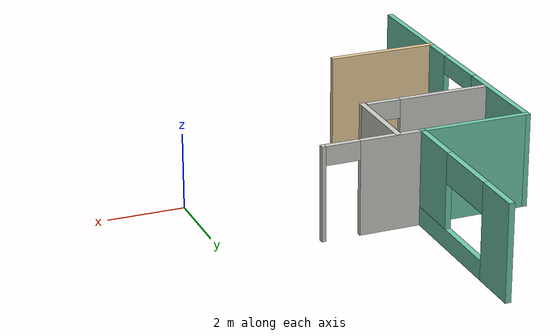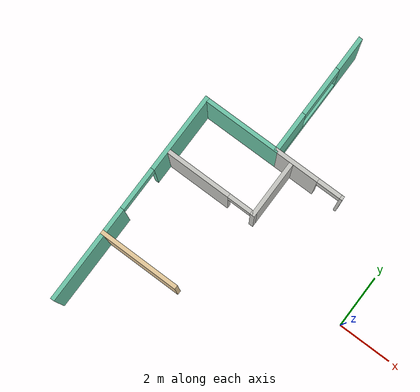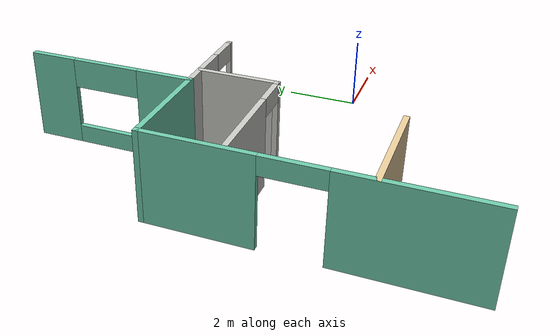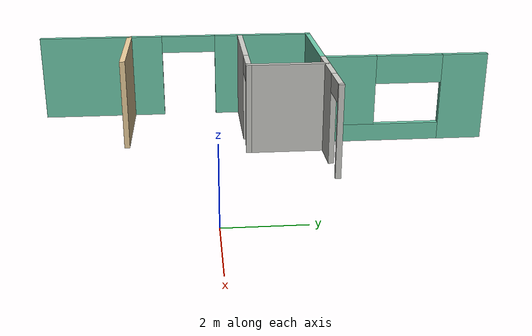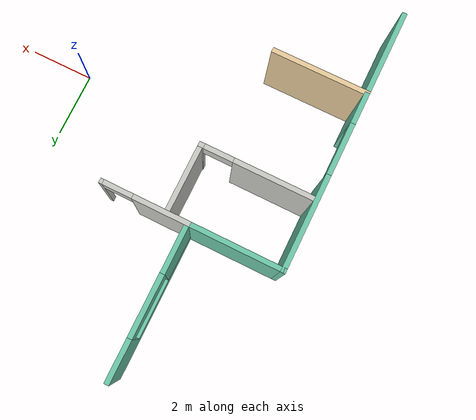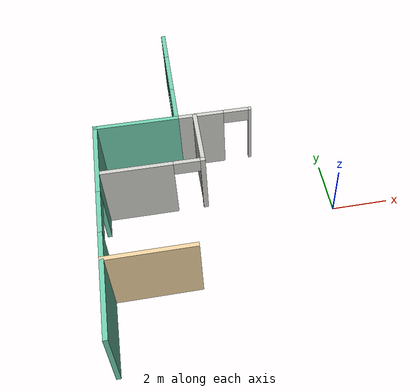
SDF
<sdf version="1.6">
 <model name="Building">
  <link name="Wall_271">
   <pose>-6.53342 -2.38169 0 0 -0 3.14159</pose>
   <visual name="Wall_271_Visual">
    <pose>0 0 1.25 0 -0 0</pose>
    <geometry><box><size>3 0.15 2.5</size></box></geometry>
    <material>
     <script><uri>file://media/materials/scripts/gazebo.material</uri><name>Gazebo/Grey</name></script>
     <ambient>0.921569 0.807843 0.615686 1</ambient>
     <shader type="pixel"/>
     <diffuse>0.7 0.7 0.7 1</diffuse>
     <specular>0.01 0.01 0.01 1</specular>
     <emissive>0 0 0 1</emissive>
    </material>
    <meta><layer>0</layer></meta>
   </visual>
   <collision name="Wall_271_Collision">
    <pose>0 0 1.25 0 -0 0</pose>
    <geometry><box><size>3 0.15 2.5</size></box></geometry>
    <surface>
     <friction>
      <ode><mu>1</mu><mu2>1</mu2><fdir1>0 0 0</fdir1><slip1>0</slip1><slip2>0</slip2></ode>
      <torsional>
       <coefficient>1</coefficient>
       <patch_radius>0</patch_radius>
       <surface_radius>0</surface_radius>
       <use_patch_radius>1</use_patch_radius>
       <ode><slip>0</slip></ode>
      </torsional>
     </friction>
     <bounce><restitution_coefficient>0</restitution_coefficient><threshold>1e+06</threshold></bounce>
     <contact>
      <collide_without_contact>0</collide_without_contact>
      <collide_without_contact_bitmask>1</collide_without_contact_bitmask>
      <collide_bitmask>1</collide_bitmask>
      <ode>
       <soft_cfm>0</soft_cfm>
       <soft_erp>0.2</soft_erp>
       <kp>1e+13</kp>
       <kd>1</kd>
       <max_vel>0.01</max_vel>
       <min_depth>0</min_depth>
      </ode>
      <bullet>
       <split_impulse>1</split_impulse>
       <split_impulse_penetration_threshold>-0.01</split_impulse_penetration_threshold>
       <soft_cfm>0</soft_cfm>
       <soft_erp>0.2</soft_erp>
       <kp>1e+13</kp>
       <kd>1</kd>
      </bullet>
     </contact>
    </surface>
   </collision>
  </link>
  <link name="Wall_3">
   <pose>-5.10853 5.41846 0 0 0 -1.5708</pose>
   <visual name="Wall_3_Visual_0">
    <pose>-1.72863 0 1.25 0 -0 0</pose>
    <geometry><box><size>1.29275 0.15 2.5</size></box></geometry>
    <material>
     <script><uri>file://media/materials/scripts/gazebo.material</uri><name>Gazebo/Grey</name></script>
     <ambient>0.435294 0.796078 0.67451 1</ambient>
     <shader type="pixel"/>
     <diffuse>0.7 0.7 0.7 1</diffuse>
     <specular>0.01 0.01 0.01 1</specular>
     <emissive>0 0 0 1</emissive>
    </material>
    <meta><layer>0</layer></meta>
   </visual>
   <visual name="Wall_3_Visual_1">
    <pose>0.646374 0 0.25 0 -0 0</pose>
    <geometry><box><size>3.45725 0.15 0.5</size></box></geometry>
    <material>
     <script><uri>file://media/materials/scripts/gazebo.material</uri><name>Gazebo/Grey</name></script>
     <ambient>0.435294 0.796078 0.67451 1</ambient>
     <shader type="pixel"/>
     <diffuse>0.7 0.7 0.7 1</diffuse>
     <specular>0.01 0.01 0.01 1</specular>
     <emissive>0 0 0 1</emissive>
    </material>
    <meta><layer>0</layer></meta>
   </visual>
   <visual name="Wall_3_Visual_2">
    <pose>1.58537 0 1.5 0 -0 0</pose>
    <geometry><box><size>1.57925 0.15 2</size></box></geometry>
    <material>
     <script><uri>file://media/materials/scripts/gazebo.material</uri><name>Gazebo/Grey</name></script>
     <ambient>0.435294 0.796078 0.67451 1</ambient>
     <shader type="pixel"/>
     <diffuse>0.7 0.7 0.7 1</diffuse>
     <specular>0.01 0.01 0.01 1</specular>
     <emissive>0 0 0 1</emissive>
    </material>
    <meta><layer>0</layer></meta>
   </visual>
   <visual name="Wall_3_Visual_3">
    <pose>-0.143253 0 2.1 0 -0 0</pose>
    <geometry><box><size>1.878 0.15 0.8</size></box></geometry>
    <material>
     <script><uri>file://media/materials/scripts/gazebo.material</uri><name>Gazebo/Grey</name></script>
     <ambient>0.435294 0.796078 0.67451 1</ambient>
     <shader type="pixel"/>
     <diffuse>0.7 0.7 0.7 1</diffuse>
     <specular>0.01 0.01 0.01 1</specular>
     <emissive>0 0 0 1</emissive>
    </material>
    <meta><layer>0</layer></meta>
   </visual>
   <collision name="Wall_3_Collision_3">
    <pose>-0.143253 0 2.1 0 -0 0</pose>
    <geometry><box><size>1.878 0.15 0.8</size></box></geometry>
    <surface>
     <friction>
      <ode><mu>1</mu><mu2>1</mu2><fdir1>0 0 0</fdir1><slip1>0</slip1><slip2>0</slip2></ode>
      <torsional>
       <coefficient>1</coefficient>
       <patch_radius>0</patch_radius>
       <surface_radius>0</surface_radius>
       <use_patch_radius>1</use_patch_radius>
       <ode><slip>0</slip></ode>
      </torsional>
     </friction>
     <bounce><restitution_coefficient>0</restitution_coefficient><threshold>1e+06</threshold></bounce>
     <contact>
      <collide_without_contact>0</collide_without_contact>
      <collide_without_contact_bitmask>1</collide_without_contact_bitmask>
      <collide_bitmask>1</collide_bitmask>
      <ode>
       <soft_cfm>0</soft_cfm>
       <soft_erp>0.2</soft_erp>
       <kp>1e+13</kp>
       <kd>1</kd>
       <max_vel>0.01</max_vel>
       <min_depth>0</min_depth>
      </ode>
      <bullet>
       <split_impulse>1</split_impulse>
       <split_impulse_penetration_threshold>-0.01</split_impulse_penetration_threshold>
       <soft_cfm>0</soft_cfm>
       <soft_erp>0.2</soft_erp>
       <kp>1e+13</kp>
       <kd>1</kd>
      </bullet>
     </contact>
    </surface>
   </collision>
   <collision name="Wall_3_Collision_0">
    <pose>-1.72863 0 1.25 0 -0 0</pose>
    <geometry><box><size>1.29275 0.15 2.5</size></box></geometry>
    <surface>
     <friction>
      <ode><mu>1</mu><mu2>1</mu2><fdir1>0 0 0</fdir1><slip1>0</slip1><slip2>0</slip2></ode>
      <torsional>
       <coefficient>1</coefficient>
       <patch_radius>0</patch_radius>
       <surface_radius>0</surface_radius>
       <use_patch_radius>1</use_patch_radius>
       <ode><slip>0</slip></ode>
      </torsional>
     </friction>
     <bounce><restitution_coefficient>0</restitution_coefficient><threshold>1e+06</threshold></bounce>
     <contact>
      <collide_without_contact>0</collide_without_contact>
      <collide_without_contact_bitmask>1</collide_without_contact_bitmask>
      <collide_bitmask>1</collide_bitmask>
      <ode>
       <soft_cfm>0</soft_cfm>
       <soft_erp>0.2</soft_erp>
       <kp>1e+13</kp>
       <kd>1</kd>
       <max_vel>0.01</max_vel>
       <min_depth>0</min_depth>
      </ode>
      <bullet>
       <split_impulse>1</split_impulse>
       <split_impulse_penetration_threshold>-0.01</split_impulse_penetration_threshold>
       <soft_cfm>0</soft_cfm>
       <soft_erp>0.2</soft_erp>
       <kp>1e+13</kp>
       <kd>1</kd>
      </bullet>
     </contact>
    </surface>
   </collision>
   <collision name="Wall_3_Collision_1">
    <pose>0.646374 0 0.25 0 -0 0</pose>
    <geometry><box><size>3.45725 0.15 0.5</size></box></geometry>
    <surface>
     <friction>
      <ode><mu>1</mu><mu2>1</mu2><fdir1>0 0 0</fdir1><slip1>0</slip1><slip2>0</slip2></ode>
      <torsional>
       <coefficient>1</coefficient>
       <patch_radius>0</patch_radius>
       <surface_radius>0</surface_radius>
       <use_patch_radius>1</use_patch_radius>
       <ode><slip>0</slip></ode>
      </torsional>
     </friction>
     <bounce><restitution_coefficient>0</restitution_coefficient><threshold>1e+06</threshold></bounce>
     <contact>
      <collide_without_contact>0</collide_without_contact>
      <collide_without_contact_bitmask>1</collide_without_contact_bitmask>
      <collide_bitmask>1</collide_bitmask>
      <ode>
       <soft_cfm>0</soft_cfm>
       <soft_erp>0.2</soft_erp>
       <kp>1e+13</kp>
       <kd>1</kd>
       <max_vel>0.01</max_vel>
       <min_depth>0</min_depth>
      </ode>
      <bullet>
       <split_impulse>1</split_impulse>
       <split_impulse_penetration_threshold>-0.01</split_impulse_penetration_threshold>
       <soft_cfm>0</soft_cfm>
       <soft_erp>0.2</soft_erp>
       <kp>1e+13</kp>
       <kd>1</kd>
      </bullet>
     </contact>
    </surface>
   </collision>
   <collision name="Wall_3_Collision_2">
    <pose>1.58537 0 1.5 0 -0 0</pose>
    <geometry><box><size>1.57925 0.15 2</size></box></geometry>
    <surface>
     <friction>
      <ode><mu>1</mu><mu2>1</mu2><fdir1>0 0 0</fdir1><slip1>0</slip1><slip2>0</slip2></ode>
      <torsional>
       <coefficient>1</coefficient>
       <patch_radius>0</patch_radius>
       <surface_radius>0</surface_radius>
       <use_patch_radius>1</use_patch_radius>
       <ode><slip>0</slip></ode>
      </torsional>
     </friction>
     <bounce><restitution_coefficient>0</restitution_coefficient><threshold>1e+06</threshold></bounce>
     <contact>
      <collide_without_contact>0</collide_without_contact>
      <collide_without_contact_bitmask>1</collide_without_contact_bitmask>
      <collide_bitmask>1</collide_bitmask>
      <ode>
       <soft_cfm>0</soft_cfm>
       <soft_erp>0.2</soft_erp>
       <kp>1e+13</kp>
       <kd>1</kd>
       <max_vel>0.01</max_vel>
       <min_depth>0</min_depth>
      </ode>
      <bullet>
       <split_impulse>1</split_impulse>
       <split_impulse_penetration_threshold>-0.01</split_impulse_penetration_threshold>
       <soft_cfm>0</soft_cfm>
       <soft_erp>0.2</soft_erp>
       <kp>1e+13</kp>
       <kd>1</kd>
      </bullet>
     </contact>
    </surface>
   </collision>
  </link>
  <link name="Wall_340">
   <pose>-3.80853 3.11846 0 0 -0 0</pose>
   <visual name="Wall_340_Visual_0">
    <pose>-0.501718 0 1.25 0 -0 0</pose>
    <geometry><box><size>1.74656 0.15 2.5</size></box></geometry>
    <material>
     <script><uri>file://media/materials/scripts/gazebo.material</uri><name>Gazebo/CeilingTiled</name></script>
     <ambient>0.921569 0.807843 0.615686 1</ambient>
     <shader type="pixel"/>
     <diffuse>1 1 1 1</diffuse>
     <specular>0 0 0 1</specular>
     <emissive>0 0 0 1</emissive>
    </material>
    <meta><layer>0</layer></meta>
   </visual>
   <visual name="Wall_340_Visual_1">
    <pose>1.32328 0 1.25 0 -0 0</pose>
    <geometry><box><size>0.103436 0.15 2.5</size></box></geometry>
    <material>
     <script><uri>file://media/materials/scripts/gazebo.material</uri><name>Gazebo/CeilingTiled</name></script>
     <ambient>0.921569 0.807843 0.615686 1</ambient>
     <shader type="pixel"/>
     <diffuse>1 1 1 1</diffuse>
     <specular>0 0 0 1</specular>
     <emissive>0 0 0 1</emissive>
    </material>
    <meta><layer>0</layer></meta>
   </visual>
   <visual name="Wall_340_Visual_2">
    <pose>0.821564 0 2.25 0 -0 0</pose>
    <geometry><box><size>0.9 0.15 0.5</size></box></geometry>
    <material>
     <script><uri>file://media/materials/scripts/gazebo.material</uri><name>Gazebo/CeilingTiled</name></script>
     <ambient>0.921569 0.807843 0.615686 1</ambient>
     <shader type="pixel"/>
     <diffuse>1 1 1 1</diffuse>
     <specular>0 0 0 1</specular>
     <emissive>0 0 0 1</emissive>
    </material>
    <meta><layer>0</layer></meta>
   </visual>
   <collision name="Wall_340_Collision_0">
    <pose>-0.501718 0 1.25 0 -0 0</pose>
    <geometry><box><size>1.74656 0.15 2.5</size></box></geometry>
    <surface>
     <friction>
      <ode><mu>1</mu><mu2>1</mu2><fdir1>0 0 0</fdir1><slip1>0</slip1><slip2>0</slip2></ode>
      <torsional>
       <coefficient>1</coefficient>
       <patch_radius>0</patch_radius>
       <surface_radius>0</surface_radius>
       <use_patch_radius>1</use_patch_radius>
       <ode><slip>0</slip></ode>
      </torsional>
     </friction>
     <bounce><restitution_coefficient>0</restitution_coefficient><threshold>1e+06</threshold></bounce>
     <contact>
      <collide_without_contact>0</collide_without_contact>
      <collide_without_contact_bitmask>1</collide_without_contact_bitmask>
      <collide_bitmask>1</collide_bitmask>
      <ode>
       <soft_cfm>0</soft_cfm>
       <soft_erp>0.2</soft_erp>
       <kp>1e+13</kp>
       <kd>1</kd>
       <max_vel>0.01</max_vel>
       <min_depth>0</min_depth>
      </ode>
      <bullet>
       <split_impulse>1</split_impulse>
       <split_impulse_penetration_threshold>-0.01</split_impulse_penetration_threshold>
       <soft_cfm>0</soft_cfm>
       <soft_erp>0.2</soft_erp>
       <kp>1e+13</kp>
       <kd>1</kd>
      </bullet>
     </contact>
    </surface>
   </collision>
   <collision name="Wall_340_Collision_1">
    <pose>1.32328 0 1.25 0 -0 0</pose>
    <geometry><box><size>0.103436 0.15 2.5</size></box></geometry>
    <surface>
     <friction>
      <ode><mu>1</mu><mu2>1</mu2><fdir1>0 0 0</fdir1><slip1>0</slip1><slip2>0</slip2></ode>
      <torsional>
       <coefficient>1</coefficient>
       <patch_radius>0</patch_radius>
       <surface_radius>0</surface_radius>
       <use_patch_radius>1</use_patch_radius>
       <ode><slip>0</slip></ode>
      </torsional>
     </friction>
     <bounce><restitution_coefficient>0</restitution_coefficient><threshold>1e+06</threshold></bounce>
     <contact>
      <collide_without_contact>0</collide_without_contact>
      <collide_without_contact_bitmask>1</collide_without_contact_bitmask>
      <collide_bitmask>1</collide_bitmask>
      <ode>
       <soft_cfm>0</soft_cfm>
       <soft_erp>0.2</soft_erp>
       <kp>1e+13</kp>
       <kd>1</kd>
       <max_vel>0.01</max_vel>
       <min_depth>0</min_depth>
      </ode>
      <bullet>
       <split_impulse>1</split_impulse>
       <split_impulse_penetration_threshold>-0.01</split_impulse_penetration_threshold>
       <soft_cfm>0</soft_cfm>
       <soft_erp>0.2</soft_erp>
       <kp>1e+13</kp>
       <kd>1</kd>
      </bullet>
     </contact>
    </surface>
   </collision>
   <collision name="Wall_340_Collision_2">
    <pose>0.821564 0 2.25 0 -0 0</pose>
    <geometry><box><size>0.9 0.15 0.5</size></box></geometry>
    <surface>
     <friction>
      <ode><mu>1</mu><mu2>1</mu2><fdir1>0 0 0</fdir1><slip1>0</slip1><slip2>0</slip2></ode>
      <torsional>
       <coefficient>1</coefficient>
       <patch_radius>0</patch_radius>
       <surface_radius>0</surface_radius>
       <use_patch_radius>1</use_patch_radius>
       <ode><slip>0</slip></ode>
      </torsional>
     </friction>
     <bounce><restitution_coefficient>0</restitution_coefficient><threshold>1e+06</threshold></bounce>
     <contact>
      <collide_without_contact>0</collide_without_contact>
      <collide_without_contact_bitmask>1</collide_without_contact_bitmask>
      <collide_bitmask>1</collide_bitmask>
      <ode>
       <soft_cfm>0</soft_cfm>
       <soft_erp>0.2</soft_erp>
       <kp>1e+13</kp>
       <kd>1</kd>
       <max_vel>0.01</max_vel>
       <min_depth>0</min_depth>
      </ode>
      <bullet>
       <split_impulse>1</split_impulse>
       <split_impulse_penetration_threshold>-0.01</split_impulse_penetration_threshold>
       <soft_cfm>0</soft_cfm>
       <soft_erp>0.2</soft_erp>
       <kp>1e+13</kp>
       <kd>1</kd>
      </bullet>
     </contact>
    </surface>
   </collision>
  </link>
  <link name="Wall_349">
   <pose>-4.45949 2.05019 0 0 0 -1.5708</pose>
   <visual name="Wall_349_Visual">
    <pose>0 0 1.25 0 -0 0</pose>
    <geometry><box><size>2.25 0.15 2.5</size></box></geometry>
    <material>
     <script><uri>file://media/materials/scripts/gazebo.material</uri><name>Gazebo/CeilingTiled</name></script>
     <ambient>0.921569 0.807843 0.615686 1</ambient>
     <shader type="pixel"/>
     <diffuse>1 1 1 1</diffuse>
     <specular>0 0 0 1</specular>
     <emissive>0 0 0 1</emissive>
    </material>
    <meta><layer>0</layer></meta>
   </visual>
   <collision name="Wall_349_Collision">
    <pose>0 0 1.25 0 -0 0</pose>
    <geometry><box><size>2.25 0.15 2.5</size></box></geometry>
    <surface>
     <friction>
      <ode><mu>1</mu><mu2>1</mu2><fdir1>0 0 0</fdir1><slip1>0</slip1><slip2>0</slip2></ode>
      <torsional>
       <coefficient>1</coefficient>
       <patch_radius>0</patch_radius>
       <surface_radius>0</surface_radius>
       <use_patch_radius>1</use_patch_radius>
       <ode><slip>0</slip></ode>
      </torsional>
     </friction>
     <bounce><restitution_coefficient>0</restitution_coefficient><threshold>1e+06</threshold></bounce>
     <contact>
      <collide_without_contact>0</collide_without_contact>
      <collide_without_contact_bitmask>1</collide_without_contact_bitmask>
      <collide_bitmask>1</collide_bitmask>
      <ode>
       <soft_cfm>0</soft_cfm>
       <soft_erp>0.2</soft_erp>
       <kp>1e+13</kp>
       <kd>1</kd>
       <max_vel>0.01</max_vel>
       <min_depth>0</min_depth>
      </ode>
      <bullet>
       <split_impulse>1</split_impulse>
       <split_impulse_penetration_threshold>-0.01</split_impulse_penetration_threshold>
       <soft_cfm>0</soft_cfm>
       <soft_erp>0.2</soft_erp>
       <kp>1e+13</kp>
       <kd>1</kd>
      </bullet>
     </contact>
    </surface>
   </collision>
  </link>
  <link name="Wall_350">
   <pose>-6.13449 1.00019 0 0 -0 3.14159</pose>
   <visual name="Wall_350_Visual_0">
    <pose>-1.66412 0 1.25 0 -0 0</pose>
    <geometry><box><size>0.17176 0.15 2.5</size></box></geometry>
    <material>
     <script><uri>file://media/materials/scripts/gazebo.material</uri><name>Gazebo/CeilingTiled</name></script>
     <ambient>0.921569 0.807843 0.615686 1</ambient>
     <shader type="pixel"/>
     <diffuse>1 1 1 1</diffuse>
     <specular>0 0 0 1</specular>
     <emissive>0 0 0 1</emissive>
    </material>
    <meta><layer>0</layer></meta>
   </visual>
   <visual name="Wall_350_Visual_1">
    <pose>0.53588 0 1.25 0 -0 0</pose>
    <geometry><box><size>2.42824 0.15 2.5</size></box></geometry>
    <material>
     <script><uri>file://media/materials/scripts/gazebo.material</uri><name>Gazebo/CeilingTiled</name></script>
     <ambient>0.921569 0.807843 0.615686 1</ambient>
     <shader type="pixel"/>
     <diffuse>1 1 1 1</diffuse>
     <specular>0 0 0 1</specular>
     <emissive>0 0 0 1</emissive>
    </material>
    <meta><layer>0</layer></meta>
   </visual>
   <visual name="Wall_350_Visual_2">
    <pose>-1.12824 0 2.25 0 -0 0</pose>
    <geometry><box><size>0.9 0.15 0.5</size></box></geometry>
    <material>
     <script><uri>file://media/materials/scripts/gazebo.material</uri><name>Gazebo/CeilingTiled</name></script>
     <ambient>0.921569 0.807843 0.615686 1</ambient>
     <shader type="pixel"/>
     <diffuse>1 1 1 1</diffuse>
     <specular>0 0 0 1</specular>
     <emissive>0 0 0 1</emissive>
    </material>
    <meta><layer>0</layer></meta>
   </visual>
   <collision name="Wall_350_Collision_0">
    <pose>-1.66412 0 1.25 0 -0 0</pose>
    <geometry><box><size>0.17176 0.15 2.5</size></box></geometry>
    <surface>
     <friction>
      <ode><mu>1</mu><mu2>1</mu2><fdir1>0 0 0</fdir1><slip1>0</slip1><slip2>0</slip2></ode>
      <torsional>
       <coefficient>1</coefficient>
       <patch_radius>0</patch_radius>
       <surface_radius>0</surface_radius>
       <use_patch_radius>1</use_patch_radius>
       <ode><slip>0</slip></ode>
      </torsional>
     </friction>
     <bounce><restitution_coefficient>0</restitution_coefficient><threshold>1e+06</threshold></bounce>
     <contact>
      <collide_without_contact>0</collide_without_contact>
      <collide_without_contact_bitmask>1</collide_without_contact_bitmask>
      <collide_bitmask>1</collide_bitmask>
      <ode>
       <soft_cfm>0</soft_cfm>
       <soft_erp>0.2</soft_erp>
       <kp>1e+13</kp>
       <kd>1</kd>
       <max_vel>0.01</max_vel>
       <min_depth>0</min_depth>
      </ode>
      <bullet>
       <split_impulse>1</split_impulse>
       <split_impulse_penetration_threshold>-0.01</split_impulse_penetration_threshold>
       <soft_cfm>0</soft_cfm>
       <soft_erp>0.2</soft_erp>
       <kp>1e+13</kp>
       <kd>1</kd>
      </bullet>
     </contact>
    </surface>
   </collision>
   <collision name="Wall_350_Collision_1">
    <pose>0.53588 0 1.25 0 -0 0</pose>
    <geometry><box><size>2.42824 0.15 2.5</size></box></geometry>
    <surface>
     <friction>
      <ode><mu>1</mu><mu2>1</mu2><fdir1>0 0 0</fdir1><slip1>0</slip1><slip2>0</slip2></ode>
      <torsional>
       <coefficient>1</coefficient>
       <patch_radius>0</patch_radius>
       <surface_radius>0</surface_radius>
       <use_patch_radius>1</use_patch_radius>
       <ode><slip>0</slip></ode>
      </torsional>
     </friction>
     <bounce><restitution_coefficient>0</restitution_coefficient><threshold>1e+06</threshold></bounce>
     <contact>
      <collide_without_contact>0</collide_without_contact>
      <collide_without_contact_bitmask>1</collide_without_contact_bitmask>
      <collide_bitmask>1</collide_bitmask>
      <ode>
       <soft_cfm>0</soft_cfm>
       <soft_erp>0.2</soft_erp>
       <kp>1e+13</kp>
       <kd>1</kd>
       <max_vel>0.01</max_vel>
       <min_depth>0</min_depth>
      </ode>
      <bullet>
       <split_impulse>1</split_impulse>
       <split_impulse_penetration_threshold>-0.01</split_impulse_penetration_threshold>
       <soft_cfm>0</soft_cfm>
       <soft_erp>0.2</soft_erp>
       <kp>1e+13</kp>
       <kd>1</kd>
      </bullet>
     </contact>
    </surface>
   </collision>
   <collision name="Wall_350_Collision_2">
    <pose>-1.12824 0 2.25 0 -0 0</pose>
    <geometry><box><size>0.9 0.15 0.5</size></box></geometry>
    <surface>
     <friction>
      <ode><mu>1</mu><mu2>1</mu2><fdir1>0 0 0</fdir1><slip1>0</slip1><slip2>0</slip2></ode>
      <torsional>
       <coefficient>1</coefficient>
       <patch_radius>0</patch_radius>
       <surface_radius>0</surface_radius>
       <use_patch_radius>1</use_patch_radius>
       <ode><slip>0</slip></ode>
      </torsional>
     </friction>
     <bounce><restitution_coefficient>0</restitution_coefficient><threshold>1e+06</threshold></bounce>
     <contact>
      <collide_without_contact>0</collide_without_contact>
      <collide_without_contact_bitmask>1</collide_without_contact_bitmask>
      <collide_bitmask>1</collide_bitmask>
      <ode>
       <soft_cfm>0</soft_cfm>
       <soft_erp>0.2</soft_erp>
       <kp>1e+13</kp>
       <kd>1</kd>
       <max_vel>0.01</max_vel>
       <min_depth>0</min_depth>
      </ode>
      <bullet>
       <split_impulse>1</split_impulse>
       <split_impulse_penetration_threshold>-0.01</split_impulse_penetration_threshold>
       <soft_cfm>0</soft_cfm>
       <soft_erp>0.2</soft_erp>
       <kp>1e+13</kp>
       <kd>1</kd>
      </bullet>
     </contact>
    </surface>
   </collision>
  </link>
  <link name="Wall_4">
   <pose>-6.53348 3.11838 0 0 0 -3.14154</pose>
   <visual name="Wall_4_Visual">
    <pose>0 0 1.25 0 -0 0</pose>
    <geometry><box><size>3 0.15 2.5</size></box></geometry>
    <material>
     <script><uri>file://media/materials/scripts/gazebo.material</uri><name>Gazebo/Grey</name></script>
     <ambient>0.435294 0.796078 0.67451 1</ambient>
     <shader type="pixel"/>
     <diffuse>0.7 0.7 0.7 1</diffuse>
     <specular>0.01 0.01 0.01 1</specular>
     <emissive>0 0 0 1</emissive>
    </material>
    <meta><layer>0</layer></meta>
   </visual>
   <collision name="Wall_4_Collision">
    <pose>0 0 1.25 0 -0 0</pose>
    <geometry><box><size>3 0.15 2.5</size></box></geometry>
    <surface>
     <friction>
      <ode><mu>1</mu><mu2>1</mu2><fdir1>0 0 0</fdir1><slip1>0</slip1><slip2>0</slip2></ode>
      <torsional>
       <coefficient>1</coefficient>
       <patch_radius>0</patch_radius>
       <surface_radius>0</surface_radius>
       <use_patch_radius>1</use_patch_radius>
       <ode><slip>0</slip></ode>
      </torsional>
     </friction>
     <bounce><restitution_coefficient>0</restitution_coefficient><threshold>1e+06</threshold></bounce>
     <contact>
      <collide_without_contact>0</collide_without_contact>
      <collide_without_contact_bitmask>1</collide_without_contact_bitmask>
      <collide_bitmask>1</collide_bitmask>
      <ode>
       <soft_cfm>0</soft_cfm>
       <soft_erp>0.2</soft_erp>
       <kp>1e+13</kp>
       <kd>1</kd>
       <max_vel>0.01</max_vel>
       <min_depth>0</min_depth>
      </ode>
      <bullet>
       <split_impulse>1</split_impulse>
       <split_impulse_penetration_threshold>-0.01</split_impulse_penetration_threshold>
       <soft_cfm>0</soft_cfm>
       <soft_erp>0.2</soft_erp>
       <kp>1e+13</kp>
       <kd>1</kd>
      </bullet>
     </contact>
    </surface>
   </collision>
  </link>
  <link name="Wall_5">
   <pose>-7.95842 -0.931691 0 0 0 -1.5708</pose>
   <visual name="Wall_5_Visual_0">
    <pose>-2.6376 0 1.25 0 -0 0</pose>
    <geometry><box><size>2.9748 0.15 2.5</size></box></geometry>
    <material>
     <script><uri>file://media/materials/scripts/gazebo.material</uri><name>Gazebo/Grey</name></script>
     <ambient>0.435294 0.796078 0.67451 1</ambient>
     <shader type="pixel"/>
     <diffuse>0.7 0.7 0.7 1</diffuse>
     <specular>0.01 0.01 0.01 1</specular>
     <emissive>0 0 0 1</emissive>
    </material>
    <meta><layer>0</layer></meta>
   </visual>
   <visual name="Wall_5_Visual_1">
    <pose>2.29573 0 1.25 0 -0 0</pose>
    <geometry><box><size>3.65854 0.15 2.5</size></box></geometry>
    <material>
     <script><uri>file://media/materials/scripts/gazebo.material</uri><name>Gazebo/Grey</name></script>
     <ambient>0.435294 0.796078 0.67451 1</ambient>
     <shader type="pixel"/>
     <diffuse>0.7 0.7 0.7 1</diffuse>
     <specular>0.01 0.01 0.01 1</specular>
     <emissive>0 0 0 1</emissive>
    </material>
    <meta><layer>0</layer></meta>
   </visual>
   <visual name="Wall_5_Visual_2">
    <pose>-0.341874 0 2.25 0 -0 0</pose>
    <geometry><box><size>1.61666 0.15 0.5</size></box></geometry>
    <material>
     <script><uri>file://media/materials/scripts/gazebo.material</uri><name>Gazebo/Grey</name></script>
     <ambient>0.435294 0.796078 0.67451 1</ambient>
     <shader type="pixel"/>
     <diffuse>0.7 0.7 0.7 1</diffuse>
     <specular>0.01 0.01 0.01 1</specular>
     <emissive>0 0 0 1</emissive>
    </material>
    <meta><layer>0</layer></meta>
   </visual>
   <collision name="Wall_5_Collision_1">
    <pose>2.29573 0 1.25 0 -0 0</pose>
    <geometry><box><size>3.65854 0.15 2.5</size></box></geometry>
    <surface>
     <friction>
      <ode><mu>1</mu><mu2>1</mu2><fdir1>0 0 0</fdir1><slip1>0</slip1><slip2>0</slip2></ode>
      <torsional>
       <coefficient>1</coefficient>
       <patch_radius>0</patch_radius>
       <surface_radius>0</surface_radius>
       <use_patch_radius>1</use_patch_radius>
       <ode><slip>0</slip></ode>
      </torsional>
     </friction>
     <bounce><restitution_coefficient>0</restitution_coefficient><threshold>1e+06</threshold></bounce>
     <contact>
      <collide_without_contact>0</collide_without_contact>
      <collide_without_contact_bitmask>1</collide_without_contact_bitmask>
      <collide_bitmask>1</collide_bitmask>
      <ode>
       <soft_cfm>0</soft_cfm>
       <soft_erp>0.2</soft_erp>
       <kp>1e+13</kp>
       <kd>1</kd>
       <max_vel>0.01</max_vel>
       <min_depth>0</min_depth>
      </ode>
      <bullet>
       <split_impulse>1</split_impulse>
       <split_impulse_penetration_threshold>-0.01</split_impulse_penetration_threshold>
       <soft_cfm>0</soft_cfm>
       <soft_erp>0.2</soft_erp>
       <kp>1e+13</kp>
       <kd>1</kd>
      </bullet>
     </contact>
    </surface>
   </collision>
   <collision name="Wall_5_Collision_0">
    <pose>-2.6376 0 1.25 0 -0 0</pose>
    <geometry><box><size>2.9748 0.15 2.5</size></box></geometry>
    <surface>
     <friction>
      <ode><mu>1</mu><mu2>1</mu2><fdir1>0 0 0</fdir1><slip1>0</slip1><slip2>0</slip2></ode>
      <torsional>
       <coefficient>1</coefficient>
       <patch_radius>0</patch_radius>
       <surface_radius>0</surface_radius>
       <use_patch_radius>1</use_patch_radius>
       <ode><slip>0</slip></ode>
      </torsional>
     </friction>
     <bounce><restitution_coefficient>0</restitution_coefficient><threshold>1e+06</threshold></bounce>
     <contact>
      <collide_without_contact>0</collide_without_contact>
      <collide_without_contact_bitmask>1</collide_without_contact_bitmask>
      <collide_bitmask>1</collide_bitmask>
      <ode>
       <soft_cfm>0</soft_cfm>
       <soft_erp>0.2</soft_erp>
       <kp>1e+13</kp>
       <kd>1</kd>
       <max_vel>0.01</max_vel>
       <min_depth>0</min_depth>
      </ode>
      <bullet>
       <split_impulse>1</split_impulse>
       <split_impulse_penetration_threshold>-0.01</split_impulse_penetration_threshold>
       <soft_cfm>0</soft_cfm>
       <soft_erp>0.2</soft_erp>
       <kp>1e+13</kp>
       <kd>1</kd>
      </bullet>
     </contact>
    </surface>
   </collision>
   <collision name="Wall_5_Collision_2">
    <pose>-0.341874 0 2.25 0 -0 0</pose>
    <geometry><box><size>1.61666 0.15 0.5</size></box></geometry>
    <surface>
     <friction>
      <ode><mu>1</mu><mu2>1</mu2><fdir1>0 0 0</fdir1><slip1>0</slip1><slip2>0</slip2></ode>
      <torsional>
       <coefficient>1</coefficient>
       <patch_radius>0</patch_radius>
       <surface_radius>0</surface_radius>
       <use_patch_radius>1</use_patch_radius>
       <ode><slip>0</slip></ode>
      </torsional>
     </friction>
     <bounce><restitution_coefficient>0</restitution_coefficient><threshold>1e+06</threshold></bounce>
     <contact>
      <collide_without_contact>0</collide_without_contact>
      <collide_without_contact_bitmask>1</collide_without_contact_bitmask>
      <collide_bitmask>1</collide_bitmask>
      <ode>
       <soft_cfm>0</soft_cfm>
       <soft_erp>0.2</soft_erp>
       <kp>1e+13</kp>
       <kd>1</kd>
       <max_vel>0.01</max_vel>
       <min_depth>0</min_depth>
      </ode>
      <bullet>
       <split_impulse>1</split_impulse>
       <split_impulse_penetration_threshold>-0.01</split_impulse_penetration_threshold>
       <soft_cfm>0</soft_cfm>
       <soft_erp>0.2</soft_erp>
       <kp>1e+13</kp>
       <kd>1</kd>
      </bullet>
     </contact>
    </surface>
   </collision>
  </link>
  <static>1</static>
 </model>
</sdf>
